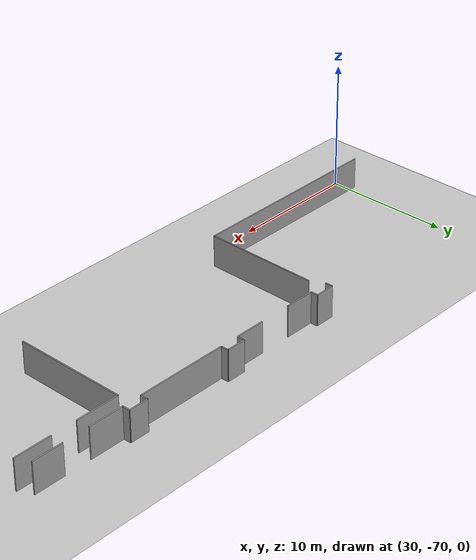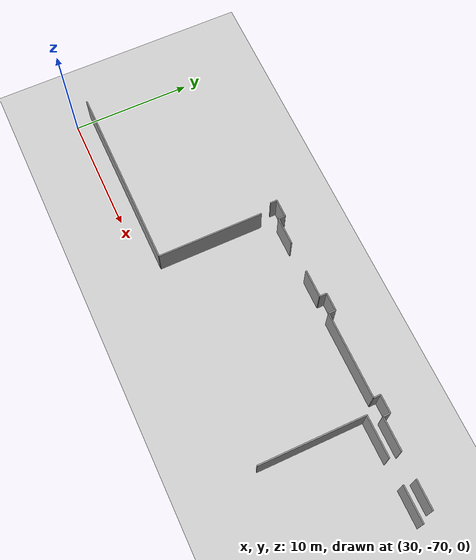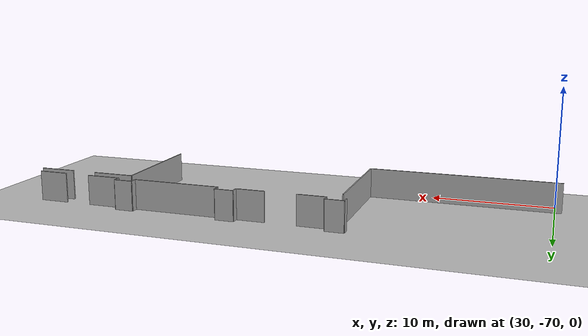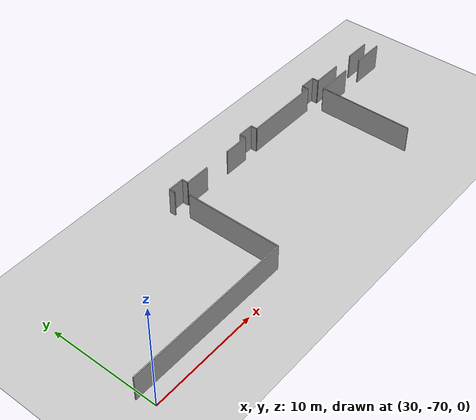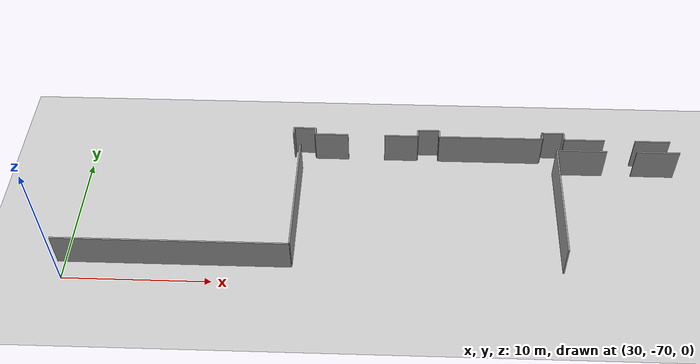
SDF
<sdf version="1.6">
 <world name="default">
  <model name="ground_plane">
   <static>1</static>
   <link name="link">
    <collision name="collision">
     <geometry><plane><normal>0 0 1</normal><size>100 100</size></plane></geometry>
     <surface><friction><ode><mu>100</mu><mu2>50</mu2></ode></friction></surface>
    </collision>
    <visual name="visual">
     <cast_shadows>0</cast_shadows>
     <geometry><plane><normal>0 0 1</normal><size>100 100</size></plane></geometry>
     <material>
      <script><uri>file://media/materials/scripts/gazebo.material</uri><name>Gazebo/Grey</name></script>
     </material>
    </visual>
   </link>
  </model>
  <model name="0510035518_A_40_1_101">
   <static>1</static>
   <link name="Wall_278">
    <collision name="Wall_278_Collision">
     <geometry><box><size>8.89348999682 0.1 2.5</size></box></geometry>
     <pose>4.44674499841 0 1.25 0 0 0</pose>
    </collision>
    <visual name="Wall_278_Visual">
     <pose>4.44674499841 0 1.25 0 0 0</pose>
     <geometry><box><size>8.89348999682 0.1 2.5</size></box></geometry>
     <material>
      <script><uri>file://media/materials/scripts/gazebo.material</uri><name>Gazebo/Grey</name></script>
      <ambient>1 1 1 1</ambient>
     </material>
    </visual>
    <pose>161.948301048 -128.334328358 0 0 0 -1.57079632679</pose>
   </link>
   <link name="Wall_279">
    <collision name="Wall_279_Collision">
     <geometry><box><size>15.6849820249 0.1 2.5</size></box></geometry>
     <pose>7.84249101246 0 1.25 0 0 0</pose>
    </collision>
    <visual name="Wall_279_Visual">
     <pose>7.84249101246 0 1.25 0 0 0</pose>
     <geometry><box><size>15.6849820249 0.1 2.5</size></box></geometry>
     <material>
      <script><uri>file://media/materials/scripts/gazebo.material</uri><name>Gazebo/Grey</name></script>
      <ambient>1 1 1 1</ambient>
     </material>
    </visual>
    <pose>161.948301048 -137.227818355 0 0 0 3.14100956328</pose>
   </link>
   <link name="Wall_280">
    <collision name="Wall_280_Collision">
     <geometry><box><size>8.89094950778 0.1 2.5</size></box></geometry>
     <pose>4.44547475389 0 1.25 0 0 0</pose>
    </collision>
    <visual name="Wall_280_Visual">
     <pose>4.44547475389 0 1.25 0 0 0</pose>
     <geometry><box><size>8.89094950778 0.1 2.5</size></box></geometry>
     <material>
      <script><uri>file://media/materials/scripts/gazebo.material</uri><name>Gazebo/Grey</name></script>
      <ambient>1 1 1 1</ambient>
     </material>
    </visual>
    <pose>180.03709114 -137.220450937 0 0 0 1.57079632679</pose>
   </link>
   <link name="Wall_281">
    <collision name="Wall_281_Collision">
     <geometry><box><size>3.49698316926 0.1 2.5</size></box></geometry>
     <pose>1.74849158463 0 1.25 0 0 0</pose>
    </collision>
    <visual name="Wall_281_Visual">
     <pose>1.74849158463 0 1.25 0 0 0</pose>
     <geometry><box><size>3.49698316926 0.1 2.5</size></box></geometry>
     <material>
      <script><uri>file://media/materials/scripts/gazebo.material</uri><name>Gazebo/Grey</name></script>
      <ambient>1 1 1 1</ambient>
     </material>
    </visual>
    <pose>180.03709114 -128.329501429 0 0 0 0.0</pose>
   </link>
   <link name="Wall_282">
    <collision name="Wall_282_Collision">
     <geometry><box><size>3.01200381073 0.1 2.5</size></box></geometry>
     <pose>1.50600190537 0 1.25 0 0 0</pose>
    </collision>
    <visual name="Wall_282_Visual">
     <pose>1.50600190537 0 1.25 0 0 0</pose>
     <geometry><box><size>3.01200381073 0.1 2.5</size></box></geometry>
     <material>
      <script><uri>file://media/materials/scripts/gazebo.material</uri><name>Gazebo/Grey</name></script>
      <ambient>1 1 1 1</ambient>
     </material>
    </visual>
    <pose>185.605080978 -128.329501429 0 0 0 0.0</pose>
   </link>
   <link name="Wall_289">
    <collision name="Wall_289_Collision">
     <geometry><box><size>2.46529056843 0.1 2.5</size></box></geometry>
     <pose>1.23264528422 0 1.25 0 0 0</pose>
    </collision>
    <visual name="Wall_289_Visual">
     <pose>1.23264528422 0 1.25 0 0 0</pose>
     <geometry><box><size>2.46529056843 0.1 2.5</size></box></geometry>
     <material>
      <script><uri>file://media/materials/scripts/gazebo.material</uri><name>Gazebo/Grey</name></script>
      <ambient>1 1 1 1</ambient>
     </material>
    </visual>
    <pose>188.089679263 -127.290187361 0 0 0 3.14159265359</pose>
   </link>
   <link name="Wall_290">
    <collision name="Wall_290_Collision">
     <geometry><box><size>2.84128294697 0.1 2.5</size></box></geometry>
     <pose>1.42064147348 0 1.25 0 0 0</pose>
    </collision>
    <visual name="Wall_290_Visual">
     <pose>1.42064147348 0 1.25 0 0 0</pose>
     <geometry><box><size>2.84128294697 0.1 2.5</size></box></geometry>
     <material>
      <script><uri>file://media/materials/scripts/gazebo.material</uri><name>Gazebo/Grey</name></script>
      <ambient>1 1 1 1</ambient>
     </material>
    </visual>
    <pose>183.476405208 -127.290187361 0 0 0 3.14159265359</pose>
   </link>
   <link name="Wall_291">
    <collision name="Wall_291_Collision">
     <geometry><box><size>0.597268974278 0.1 2.5</size></box></geometry>
     <pose>0.298634487139 0 1.25 0 0 0</pose>
    </collision>
    <visual name="Wall_291_Visual">
     <pose>0.298634487139 0 1.25 0 0 0</pose>
     <geometry><box><size>0.597268974278 0.1 2.5</size></box></geometry>
     <material>
      <script><uri>file://media/materials/scripts/gazebo.material</uri><name>Gazebo/Grey</name></script>
      <ambient>1 1 1 1</ambient>
     </material>
    </visual>
    <pose>180.635122261 -127.290187361 0 0 0 1.57079632679</pose>
   </link>
   <link name="Wall_292">
    <collision name="Wall_292_Collision">
     <geometry><box><size>1.53750396951 0.1 2.5</size></box></geometry>
     <pose>0.768751984757 0 1.25 0 0 0</pose>
    </collision>
    <visual name="Wall_292_Visual">
     <pose>0.768751984757 0 1.25 0 0 0</pose>
     <geometry><box><size>1.53750396951 0.1 2.5</size></box></geometry>
     <material>
      <script><uri>file://media/materials/scripts/gazebo.material</uri><name>Gazebo/Grey</name></script>
      <ambient>1 1 1 1</ambient>
     </material>
    </visual>
    <pose>180.635122261 -126.692918387 0 0 0 3.14159265359</pose>
   </link>
   <link name="Wall_293">
    <collision name="Wall_293_Collision">
     <geometry><box><size>0.590155604954 0.1 2.5</size></box></geometry>
     <pose>0.295077802477 0 1.25 0 0 0</pose>
    </collision>
    <visual name="Wall_293_Visual">
     <pose>0.295077802477 0 1.25 0 0 0</pose>
     <geometry><box><size>0.590155604954 0.1 2.5</size></box></geometry>
     <material>
      <script><uri>file://media/materials/scripts/gazebo.material</uri><name>Gazebo/Grey</name></script>
      <ambient>1 1 1 1</ambient>
     </material>
    </visual>
    <pose>179.097618292 -126.692918387 0 0 0 -1.57079632679</pose>
   </link>
   <link name="Wall_294">
    <collision name="Wall_294_Collision">
     <geometry><box><size>7.31152746904 0.1 2.5</size></box></geometry>
     <pose>3.65576373452 0 1.25 0 0 0</pose>
    </collision>
    <visual name="Wall_294_Visual">
     <pose>3.65576373452 0 1.25 0 0 0</pose>
     <geometry><box><size>7.31152746904 0.1 2.5</size></box></geometry>
     <material>
      <script><uri>file://media/materials/scripts/gazebo.material</uri><name>Gazebo/Grey</name></script>
      <ambient>1 1 1 1</ambient>
     </material>
    </visual>
    <pose>179.097618292 -127.283073992 0 0 0 3.14159265359</pose>
   </link>
   <link name="Wall_295">
    <collision name="Wall_295_Collision">
     <geometry><box><size>0.596506827564 0.1 2.5</size></box></geometry>
     <pose>0.298253413782 0 1.25 0 0 0</pose>
    </collision>
    <visual name="Wall_295_Visual">
     <pose>0.298253413782 0 1.25 0 0 0</pose>
     <geometry><box><size>0.596506827564 0.1 2.5</size></box></geometry>
     <material>
      <script><uri>file://media/materials/scripts/gazebo.material</uri><name>Gazebo/Grey</name></script>
      <ambient>1 1 1 1</ambient>
     </material>
    </visual>
    <pose>171.786090822 -127.283073992 0 0 0 1.57079632679</pose>
   </link>
   <link name="Wall_296">
    <collision name="Wall_296_Collision">
     <geometry><box><size>1.53369323595 0.1 2.5</size></box></geometry>
     <pose>0.766846617974 0 1.25 0 0 0</pose>
    </collision>
    <visual name="Wall_296_Visual">
     <pose>0.766846617974 0 1.25 0 0 0</pose>
     <geometry><box><size>1.53369323595 0.1 2.5</size></box></geometry>
     <material>
      <script><uri>file://media/materials/scripts/gazebo.material</uri><name>Gazebo/Grey</name></script>
      <ambient>1 1 1 1</ambient>
     </material>
    </visual>
    <pose>171.786090822 -126.686567164 0 0 0 3.14159265359</pose>
   </link>
   <link name="Wall_297">
    <collision name="Wall_297_Collision">
     <geometry><box><size>0.588631311527 0.1 2.5</size></box></geometry>
     <pose>0.294315655764 0 1.25 0 0 0</pose>
    </collision>
    <visual name="Wall_297_Visual">
     <pose>0.294315655764 0 1.25 0 0 0</pose>
     <geometry><box><size>0.588631311527 0.1 2.5</size></box></geometry>
     <material>
      <script><uri>file://media/materials/scripts/gazebo.material</uri><name>Gazebo/Grey</name></script>
      <ambient>1 1 1 1</ambient>
     </material>
    </visual>
    <pose>170.252397587 -126.686567164 0 0 0 -1.57079632679</pose>
   </link>
   <link name="Wall_298">
    <collision name="Wall_298_Collision">
     <geometry><box><size>2.37078437599 0.1 2.5</size></box></geometry>
     <pose>1.185392188 0 1.25 0 0 0</pose>
    </collision>
    <visual name="Wall_298_Visual">
     <pose>1.185392188 0 1.25 0 0 0</pose>
     <geometry><box><size>2.37078437599 0.1 2.5</size></box></geometry>
     <material>
      <script><uri>file://media/materials/scripts/gazebo.material</uri><name>Gazebo/Grey</name></script>
      <ambient>1 1 1 1</ambient>
     </material>
    </visual>
    <pose>170.252397587 -127.275198476 0 0 0 3.14159265359</pose>
   </link>
   <link name="Wall_299">
    <collision name="Wall_299_Collision">
     <geometry><box><size>2.36951413147 0.1 2.5</size></box></geometry>
     <pose>1.18475706574 0 1.25 0 0 0</pose>
    </collision>
    <visual name="Wall_299_Visual">
     <pose>1.18475706574 0 1.25 0 0 0</pose>
     <geometry><box><size>2.36951413147 0.1 2.5</size></box></geometry>
     <material>
      <script><uri>file://media/materials/scripts/gazebo.material</uri><name>Gazebo/Grey</name></script>
      <ambient>1 1 1 1</ambient>
     </material>
    </visual>
    <pose>165.291838679 -127.275198476 0 0 0 3.14159265359</pose>
   </link>
   <link name="Wall_300">
    <collision name="Wall_300_Collision">
     <geometry><box><size>0.577199110829 0.1 2.5</size></box></geometry>
     <pose>0.288599555414 0 1.25 0 0 0</pose>
    </collision>
    <visual name="Wall_300_Visual">
     <pose>0.288599555414 0 1.25 0 0 0</pose>
     <geometry><box><size>0.577199110829 0.1 2.5</size></box></geometry>
     <material>
      <script><uri>file://media/materials/scripts/gazebo.material</uri><name>Gazebo/Grey</name></script>
      <ambient>1 1 1 1</ambient>
     </material>
    </visual>
    <pose>162.922324547 -127.275198476 0 0 0 1.57079632679</pose>
   </link>
   <link name="Wall_301">
    <collision name="Wall_301_Collision">
     <geometry><box><size>1.5311527469 0.1 2.5</size></box></geometry>
     <pose>0.765576373452 0 1.25 0 0 0</pose>
    </collision>
    <visual name="Wall_301_Visual">
     <pose>0.765576373452 0 1.25 0 0 0</pose>
     <geometry><box><size>1.5311527469 0.1 2.5</size></box></geometry>
     <material>
      <script><uri>file://media/materials/scripts/gazebo.material</uri><name>Gazebo/Grey</name></script>
      <ambient>1 1 1 1</ambient>
     </material>
    </visual>
    <pose>162.922324547 -126.697999365 0 0 0 3.14159265359</pose>
   </link>
   <link name="Wall_302">
    <collision name="Wall_302_Collision">
     <geometry><box><size>0.57033979041 0.1 2.5</size></box></geometry>
     <pose>0.285169895205 0 1.25 0 0 0</pose>
    </collision>
    <visual name="Wall_302_Visual">
     <pose>0.285169895205 0 1.25 0 0 0</pose>
     <geometry><box><size>0.57033979041 0.1 2.5</size></box></geometry>
     <material>
      <script><uri>file://media/materials/scripts/gazebo.material</uri><name>Gazebo/Grey</name></script>
      <ambient>1 1 1 1</ambient>
     </material>
    </visual>
    <pose>161.391171801 -126.697999365 0 0 0 -1.57079632679</pose>
   </link>
   <pose>-116.8 68.630612893 0 0 0 0</pose>
  </model>
 </world>
</sdf>
